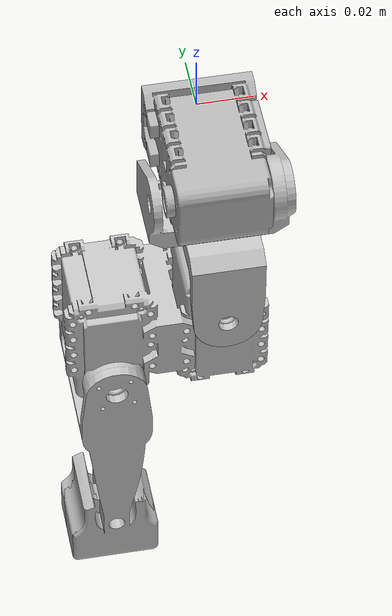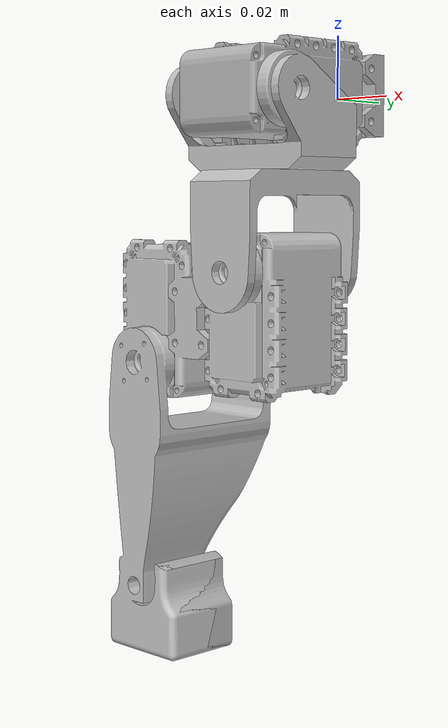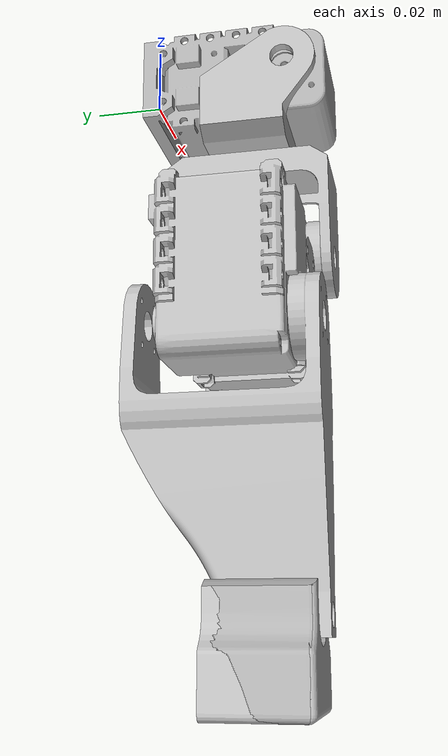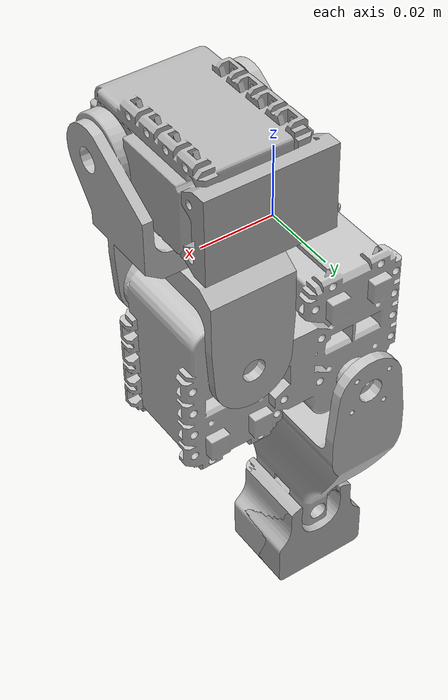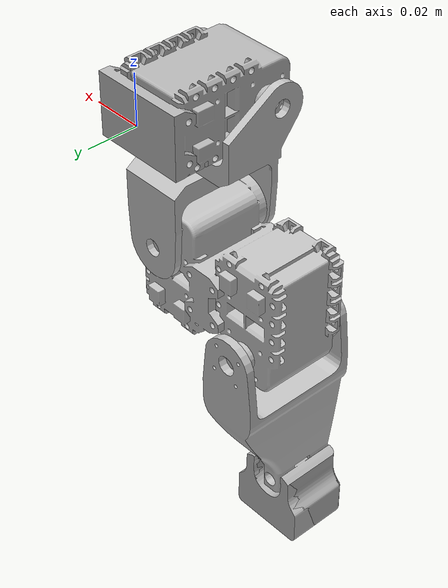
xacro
<?xml version="1.0"?>

<robot name="clifford" xmlns:xacro="http://www.ros.org/wiki/xacro">
  <link name='base_footprint'>
  </link>

  <joint name="base_joint" type="fixed">
    <parent link="base_footprint"/>
    <child link="base_link"/>
    <origin xyz="0 0 0"/>
  </joint>

<link
  name="base_link">
  <inertial>
    <origin
      xyz="0.000404760110798724 -0.0262801599393358 -4.7832233749018E-09"
      rpy="0 0 0" />
    <mass
      value="0.0462522327579766" />
    <inertia
      ixx="1.01654974343411E-05"
      ixy="-3.27236953918739E-08"
      ixz="9.75250853236591E-14"
      iyy="4.48465461427614E-06"
      iyz="-9.88325451060501E-12"
      izz="9.36644002031219E-06" />
  </inertial>
  <visual>
    <origin
      xyz="0 0 0"
      rpy="0 0 0" />
    <geometry>
      <mesh
        filename="package://clifford/meshes/base_link.STL" />
    </geometry>
    <material
      name="">
      <color
        rgba="0.698039215686274 0.698039215686274 0.698039215686274 1" />
    </material>
  </visual>
  <collision>
    <origin
      xyz="0 0 0"
      rpy="0 0 0" />
    <geometry>
      <mesh
        filename="package://clifford/meshes/base_link.STL" />
    </geometry>
  </collision>
</link>
<link
  name="hombro_DA_link">
  <inertial>
    <origin
      xyz="0.0235134644488805 0.0109374441390317 -0.0182185333672982"
      rpy="0 0 0" />
    <mass
      value="0.0261932946991297" />
    <inertia
      ixx="9.41879613898458E-06"
      ixy="-2.95481845444454E-07"
      ixz="-1.47645275845611E-12"
      iyy="7.07802744654586E-06"
      iyz="-6.42575058827402E-13"
      izz="7.88631797757592E-06" />
  </inertial>
  <visual>
    <origin
      xyz="0 0 0"
      rpy="0 0 0" />
    <geometry>
      <mesh
        filename="package://clifford/meshes/hombro_DA_link.STL" />
    </geometry>
    <material
      name="">
      <color
        rgba="0.752941176470588 0.752941176470588 0.752941176470588 1" />
    </material>
  </visual>
  <collision>
    <origin
      xyz="0 0 0"
      rpy="0 0 0" />
    <geometry>
      <mesh
        filename="package://clifford/meshes/hombro_DA_link.STL" />
    </geometry>
  </collision>
</link>
<joint
  name="hombro_DA_joint"
  type="revolute">
  <origin
    xyz="0.0201 -0.0425 0"
    rpy="0 1.5708 0" />
  <parent
    link="base_link" />
  <child
    link="hombro_DA_link" />
  <axis
    xyz="0 0 1" />
  <limit
    lower="-1.57"
    upper="1.57"
    effort="0"
    velocity="0" />
</joint>
<link
  name="codo_DA_link">
  <inertial>
    <origin
      xyz="0.0191532698126837 0.0144877297300182 -0.0193721226509556"
      rpy="0 0 0" />
    <mass
      value="0.0941790668231541" />
    <inertia
      ixx="1.93206121325771E-05"
      ixy="1.97665090258884E-11"
      ixz="-5.46267025767418E-22"
      iyy="8.49000139779705E-06"
      iyz="6.01503153113251E-21"
      izz="2.04322976492746E-05" />
  </inertial>
  <visual>
    <origin
      xyz="0 0 0"
      rpy="0 0 0" />
    <geometry>
      <mesh
        filename="package://clifford/meshes/codo_DA_link.STL" />
    </geometry>
    <material
      name="">
      <color
        rgba="0.752941176470588 0.752941176470588 0.752941176470588 1" />
    </material>
  </visual>
  <collision>
    <origin
      xyz="0 0 0"
      rpy="0 0 0" />
    <geometry>
      <mesh
        filename="package://clifford/meshes/codo_DA_link.STL" />
    </geometry>
  </collision>
</link>
<joint
  name="codo_DA_joint"
  type="revolute">
  <origin
    xyz="0.0535 -0.0071802 -0.018711"
    rpy="1.5708 1.5708 0" />
  <parent
    link="hombro_DA_link" />
  <child
    link="codo_DA_link" />
  <axis
    xyz="0 0 1" />
  <limit
    lower="-1.57"
    upper="1.57"
    effort="0"
    velocity="0" />
</joint>
<link
  name="muneca_DA_link">
  <inertial>
    <origin
      xyz="0.0496497730962202 -0.00035471129947677 -0.0150690792304184"
      rpy="0 0 0" />
    <mass
      value="0.0722019581024167" />
    <inertia
      ixx="1.47052469010775E-05"
      ixy="1.11255794297937E-07"
      ixz="-2.5527374172831E-06"
      iyy="2.6079109169478E-05"
      iyz="2.97052466135286E-08"
      izz="1.81505602847657E-05" />
  </inertial>
  <visual>
    <origin
      xyz="0 0 0"
      rpy="0 0 0" />
    <geometry>
      <mesh
        filename="package://clifford/meshes/muneca_DA_link.STL" />
    </geometry>
    <material
      name="">
      <color
        rgba="0.752941176470588 0.752941176470588 0.752941176470588 1" />
    </material>
  </visual>
  <collision>
    <origin
      xyz="0 0 0"
      rpy="0 0 0" />
    <geometry>
      <mesh
        filename="package://clifford/meshes/muneca_DA_link.STL" />
    </geometry>
  </collision>
</link>
<joint
  name="muneca_DA_joint"
  type="revolute">
  <origin
    xyz="0.039 0.0295 0"
    rpy="0 0 1.5708" />
  <parent
    link="codo_DA_link" />
  <child
    link="muneca_DA_link" />
  <axis
    xyz="0 0 1" />
  <limit
    lower="-1.57"
    upper="1.57"
    effort="0"
    velocity="0" />
</joint>
<link
  name="end_effector_link">
  <inertial>
    <origin
      xyz="0.00102324225337803 1.00084656361188E-07 -0.0115108382910564"
      rpy="0 0 0" />
    <mass
      value="0.0222927146009121" />
    <inertia
      ixx="3.05612535656685E-06"
      ixy="1.04262485709781E-11"
      ixz="1.85503823863112E-08"
      iyy="2.4363723196985E-06"
      iyz="3.86353851868974E-11"
      izz="3.01470393196093E-06" />
  </inertial>
  <visual>
    <origin
      xyz="0 0 0"
      rpy="0 0 0" />
    <geometry>
      <mesh
        filename="package://clifford/meshes/end_effector_link.STL" />
    </geometry>
    <material
      name="">
      <color
        rgba="0.698039215686274 0.698039215686274 0.698039215686274 1" />
    </material>
  </visual>
  <collision>
    <origin
      xyz="0 0 0"
      rpy="0 0 0" />
    <geometry>
      <mesh
        filename="package://clifford/meshes/end_effector_link.STL" />
    </geometry>
  </collision>
</link>
<joint
  name="end_effector_joint"
  type="fixed">
  <origin
    xyz="0.094739 -0.00081204 -0.012222"
    rpy="1.5708 -1.5691 1.5708" />
  <parent
    link="muneca_DA_link" />
  <child
    link="end_effector_link" />
  <axis
    xyz="0 0 0" />
  <limit
    lower="-1.57"
    upper="1.57"
    effort="0"
    velocity="0" />
</joint>
</robot>
